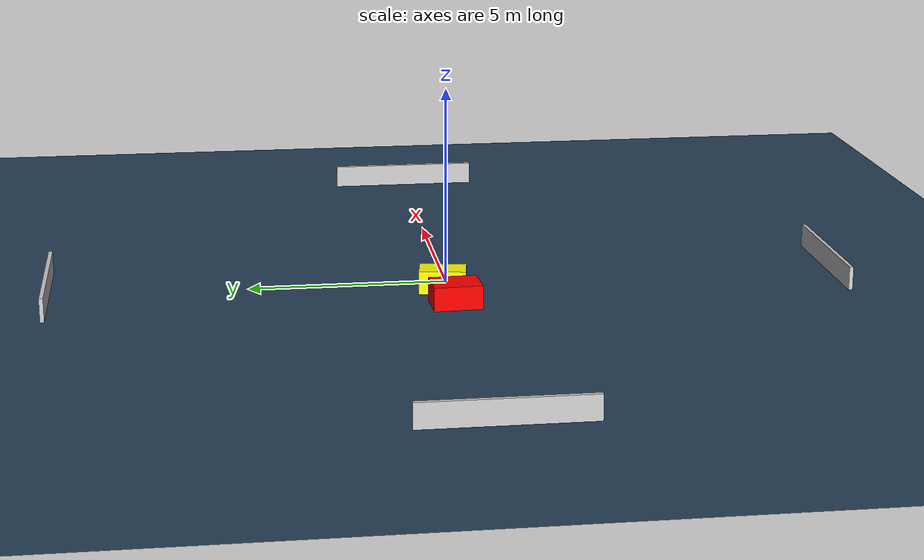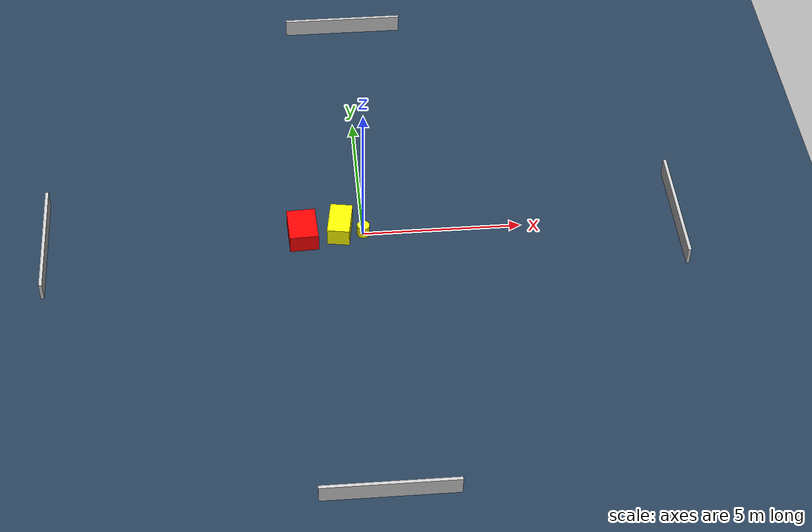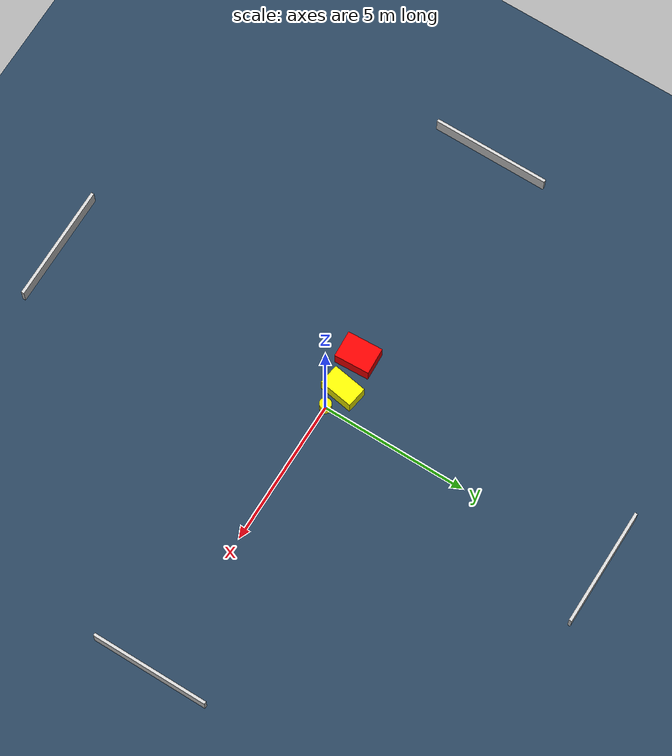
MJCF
<?xml version="1.0" ?>
<mujoco model="generated_environment">
  <option timestep="0.01" integrator="RK4" cone="elliptic"/>
  <default>
    <geom density="1"/>
  </default>
  <asset>
    <texture builtin="gradient" height="3072" name="skybox" rgb1="0.3 0.5 0.7" rgb2="0 0 0" type="skybox" width="512"/>
    <texture builtin="checker" height="300" name="groundplane" rgb1="0.2 0.3 0.4" rgb2="0.1 0.2 0.3" type="2d" width="300"/>
    <material name="groundplane" reflectance="0.2" texrepeat="5 5" texture="groundplane"/>
  </asset>
  <worldbody>
    <light dir="0 0 -1" directional="true" pos="0 0 1.5"/>
    <geom condim="3" friction="0.5 0.005 0.001" material="groundplane" name="floor" pos="0 0 0" size="0 0 0.05" type="plane"/>
    <body name="walls">
      <geom name="wall_1" condim="4" pos="-10.0 0.0 0.3" rgba="0.800000011920929 0.800000011920929 0.800000011920929 1.0" size="0.05 2.0 0.3" type="box"/>
      <geom name="wall_2" condim="4" pos="10.0 0.0 0.3" rgba="0.800000011920929 0.800000011920929 0.800000011920929 1.0" size="0.05 2.0 0.3" type="box"/>
      <geom name="wall_3" condim="4" pos="0.0 -10.0 0.3" rgba="0.800000011920929 0.800000011920929 0.800000011920929 1.0" size="2.0 0.05 0.3" type="box"/>
      <geom name="wall_4" condim="4" pos="0.0 10.0 0.3" rgba="0.800000011920929 0.800000011920929 0.800000011920929 1.0" size="2.0 0.05 0.3" type="box"/>
    </body>
    <body name="robot">
      <joint name="joint_x" type="slide" pos="0 0 0" axis="1 0 0"/>
      <joint name="joint_y" type="slide" pos="0 0 0" axis="0 1 0"/>
      <geom name="robot" type="cylinder" pos="0.0 0.0 0.2" size="0.2 0.2 0.0" mass="5.0" friction="1.0 0.005 0.0001" condim="4" rgba="1.0 1.0 0.0 1.0"/>
    </body>
    <body name="obstacle_1_movable">
      <geom name="obstacle_1_movable" condim="4" pos="-0.7292729365027542 0.1762590988032577 0.3" euler="0 0 350.9419537052543" friction="0.0 0.005 0.001" rgba="1.0 1.0 0.0 1.0" size="0.35259395074997035 0.5884874792804411 0.3" type="box" mass="0.1"/>
      <joint type="free"/>
    </body>
    <body name="obstacle_2_static">
      <geom name="obstacle_2_static" condim="4" pos="-1.9200082014658701 0.011293482284544794 0.3" euler="0 0 182.5749277728662" friction="0.0 0.005 0.001" rgba="1.0 0.0 0.0 1.0" size="0.453684955349687 0.6019919612887912 0.3" type="box"/>
    </body>
  </worldbody>
  <actuator>
    <motor name="actuator_x" joint="joint_x" gear="1" ctrlrange="-1 1"/>
    <motor name="actuator_y" joint="joint_y" gear="1" ctrlrange="-1 1"/>
  </actuator>
</mujoco>
